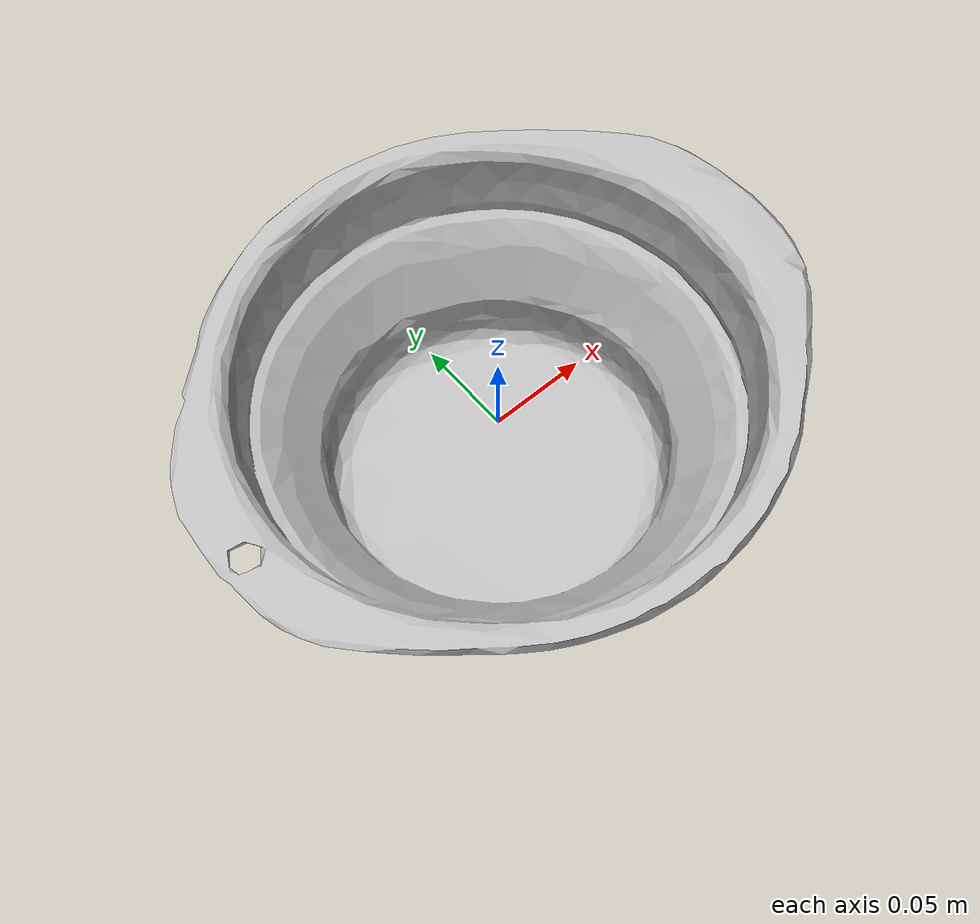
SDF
<?xml version='1.0'?>
<sdf version='1.6'>
	<model name='b_big_bowl'>
		<static>false</static>
		<pose>0 0 0 0 0 0</pose>

		<link name='link'>
			<inertial>
			<mass>0.35</mass>
			<pose>-0.0022966 -0.0039142 0.0041527 0 0 0</pose>
				<inertia>
					<ixx>0.0009479167</ixx>
					<iyy>0.0009479167</iyy>
					<izz>0.00175</izz>
				</inertia>
			</inertial>
			<collision name='collision'>
				<geometry>
					<mesh>
						<uri>model://b_big_bowl/b_big_bowl.dae</uri>
					</mesh>
				</geometry>
				<surface>
					<friction>
						<ode>
							<mu>0.2</mu>
							<mu2>0.2</mu2>
						</ode>
					</friction>
				</surface>
			</collision>
			<visual name='visual'>
				<geometry>
					<mesh>
						<uri>model://b_big_bowl/b_big_bowl.dae</uri>
					</mesh>
				</geometry>
			</visual>
		</link>
	</model>
</sdf>
